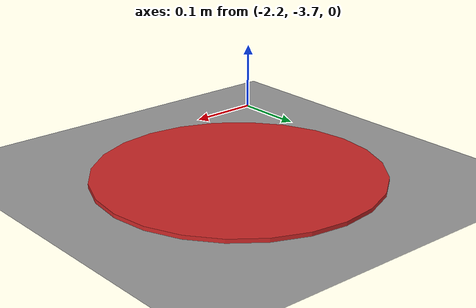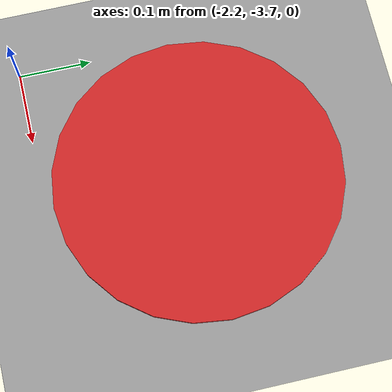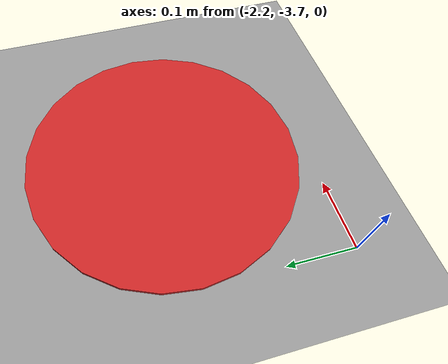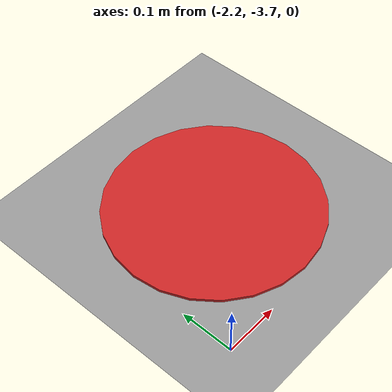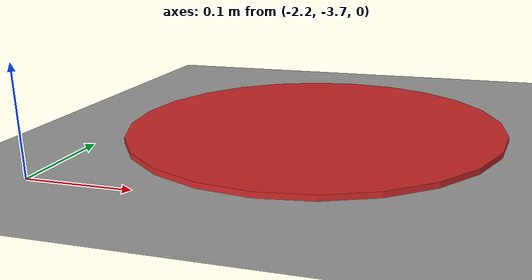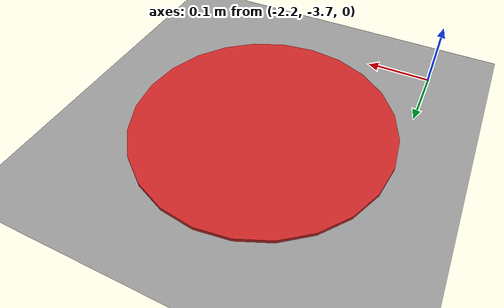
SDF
<sdf version="1.4">
 <world name="default">
  <light name="sun" type="directional">
   <pose>0 0 10 0 -0 0</pose>
   <diffuse>0.8 0.8 0.8 1</diffuse>
   <specular>0.2 0.2 0.2 1</specular>
   <attenuation>
    <range>1000</range>
    <constant>0.9</constant>
    <linear>0.01</linear>
    <quadratic>0.001</quadratic>
   </attenuation>
   <direction>0.5 0.1 -0.9</direction>
  </light>
  <scene><ambient>0.4 0.4 0.4 1</ambient><background>0.7 0.7 0.7 1</background><shadows>1</shadows></scene>
  <physics type="ode">
   <max_step_size>0.01</max_step_size>
   <real_time_factor>1</real_time_factor>
   <real_time_update_rate>100</real_time_update_rate>
   <gravity>0 0 -9.8</gravity>
  </physics>
  <model name="ground_plane_0">
   <static>1</static>
   <link name="link">
    <collision name="collision">
     <geometry><plane><normal>0 0 1</normal><size>100 100</size></plane></geometry>
     <surface><friction><ode><mu>100</mu><mu2>50</mu2></ode></friction></surface>
    </collision>
    <visual name="visual">
     <cast_shadows>0</cast_shadows>
     <geometry><plane><normal>0 0 1</normal><size>100 100</size></plane></geometry>
     <material>
      <script><uri>file://media/materials/scripts/gazebo.material</uri><name>Gazebo/Grey</name></script>
     </material>
    </visual>
    <velocity_decay><linear>0</linear><angular>0</angular></velocity_decay>
   </link>
   <pose>0.497681 0 0 0 -0 0</pose>
  </model>
  <model name="unit_cylinder_1">
   <pose>-2 -3.4888 0 0 -0 0</pose>
   <link name="link">
    <inertial>
     <mass>1</mass>
     <inertia><ixx>1</ixx><ixy>0</ixy><ixz>0</ixz><iyy>1</iyy><iyz>0</iyz><izz>1</izz></inertia>
    </inertial>
    <collision name="collision">
     <geometry><cylinder><radius>0.2</radius><length>0.01</length></cylinder></geometry>
    </collision>
    <visual name="visual">
     <geometry><cylinder><radius>0.2</radius><length>0.01</length></cylinder></geometry>
     <material>
      <script><uri>file://media/materials/scripts/gazebo.material</uri><name>Gazebo/Red</name></script>
     </material>
    </visual>
    <velocity_decay><linear>0</linear><angular>0</angular></velocity_decay>
   </link>
   <static>0</static>
  </model>
 </world>
</sdf>
